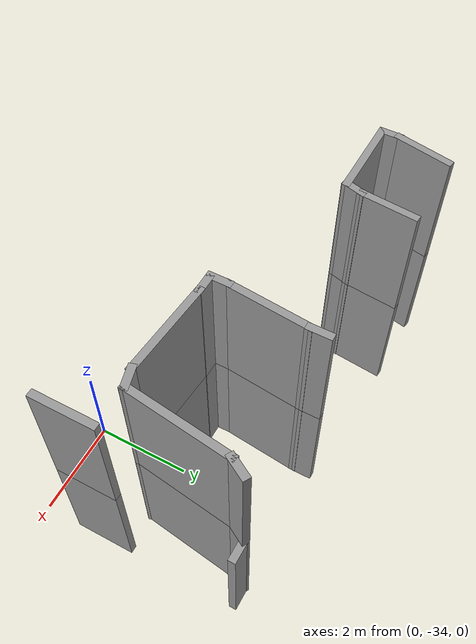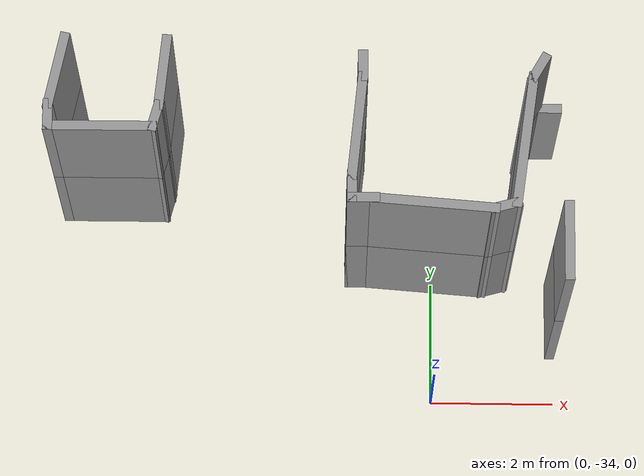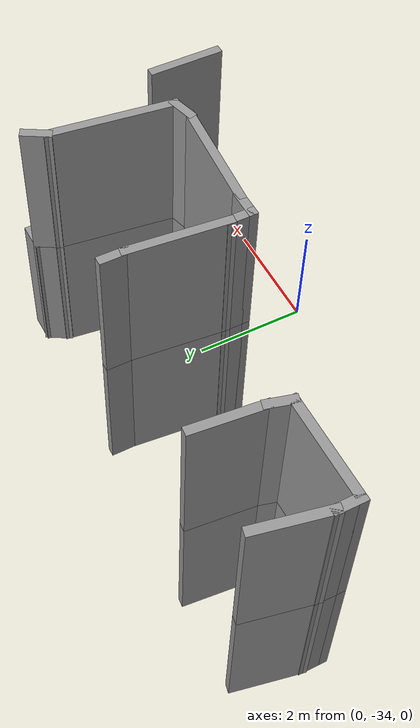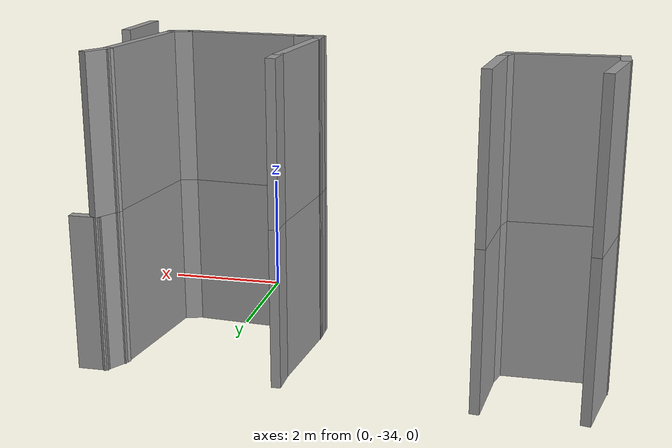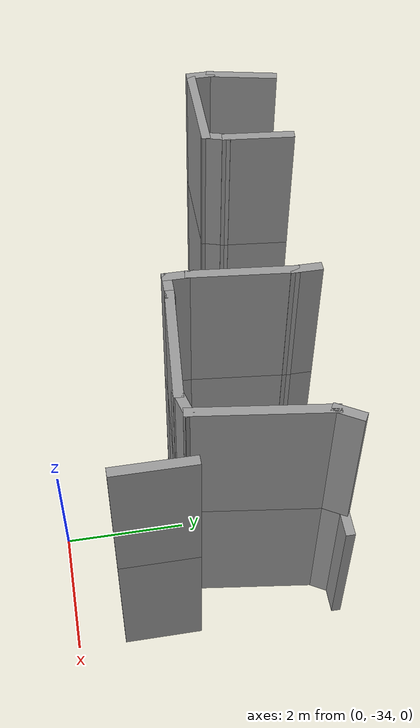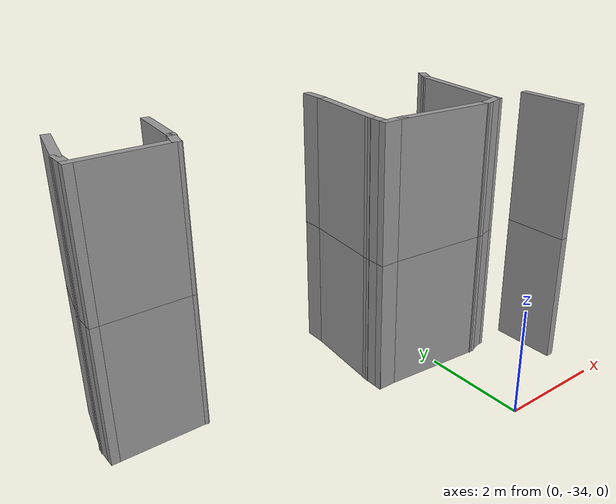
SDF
<sdf version="1.7">
 <model name="EnvDC01">
  <link name="Wall_223">
   <pose>1.94799 -32.6091 0 0 -0 1.5708</pose>
   <visual name="Wall_223_Visual">
    <pose>0 0 1.25 0 -0 0</pose>
    <geometry><box><size>1.25 0.15 2.5</size></box></geometry>
    <material>
     <script><uri>file://media/materials/scripts/gazebo.material</uri><name>Gazebo/Grey</name></script>
     <ambient>1 1 1 1</ambient>
     <shader type="pixel"/>
    </material>
    <meta><layer>0</layer></meta>
   </visual>
   <collision name="Wall_223_Collision">
    <pose>0 0 1.25 0 -0 0</pose>
    <geometry><box><size>1.25 0.15 2.5</size></box></geometry>
    <surface>
     <friction>
      <ode><mu>1</mu><mu2>1</mu2><fdir1>0 0 0</fdir1><slip1>0</slip1><slip2>0</slip2></ode>
      <torsional>
       <coefficient>1</coefficient>
       <patch_radius>0</patch_radius>
       <surface_radius>0</surface_radius>
       <use_patch_radius>1</use_patch_radius>
       <ode><slip>0</slip></ode>
      </torsional>
     </friction>
     <bounce><restitution_coefficient>0</restitution_coefficient><threshold>1e+06</threshold></bounce>
     <contact>
      <collide_without_contact>0</collide_without_contact>
      <collide_without_contact_bitmask>1</collide_without_contact_bitmask>
      <collide_bitmask>1</collide_bitmask>
      <ode>
       <soft_cfm>0</soft_cfm>
       <soft_erp>0.2</soft_erp>
       <kp>1e+13</kp>
       <kd>1</kd>
       <max_vel>0.01</max_vel>
       <min_depth>0</min_depth>
      </ode>
      <bullet>
       <split_impulse>1</split_impulse>
       <split_impulse_penetration_threshold>-0.01</split_impulse_penetration_threshold>
       <soft_cfm>0</soft_cfm>
       <soft_erp>0.2</soft_erp>
       <kp>1e+13</kp>
       <kd>1</kd>
      </bullet>
     </contact>
    </surface>
   </collision>
  </link>
  <link name="Wall_227">
   <pose>1.77299 -29.7091 0 0 -0 3.14159</pose>
   <visual name="Wall_227_Visual">
    <pose>0 0 1.25 0 -0 0</pose>
    <geometry><box><size>0.5 0.15 2.5</size></box></geometry>
    <material>
     <script><uri>file://media/materials/scripts/gazebo.material</uri><name>Gazebo/Grey</name></script>
     <ambient>1 1 1 1</ambient>
     <shader type="pixel"/>
    </material>
    <meta><layer>0</layer></meta>
   </visual>
   <collision name="Wall_227_Collision">
    <pose>0 0 1.25 0 -0 0</pose>
    <geometry><box><size>0.5 0.15 2.5</size></box></geometry>
    <surface>
     <friction>
      <ode><mu>1</mu><mu2>1</mu2><fdir1>0 0 0</fdir1><slip1>0</slip1><slip2>0</slip2></ode>
      <torsional>
       <coefficient>1</coefficient>
       <patch_radius>0</patch_radius>
       <surface_radius>0</surface_radius>
       <use_patch_radius>1</use_patch_radius>
       <ode><slip>0</slip></ode>
      </torsional>
     </friction>
     <bounce><restitution_coefficient>0</restitution_coefficient><threshold>1e+06</threshold></bounce>
     <contact>
      <collide_without_contact>0</collide_without_contact>
      <collide_without_contact_bitmask>1</collide_without_contact_bitmask>
      <collide_bitmask>1</collide_bitmask>
      <ode>
       <soft_cfm>0</soft_cfm>
       <soft_erp>0.2</soft_erp>
       <kp>1e+13</kp>
       <kd>1</kd>
       <max_vel>0.01</max_vel>
       <min_depth>0</min_depth>
      </ode>
      <bullet>
       <split_impulse>1</split_impulse>
       <split_impulse_penetration_threshold>-0.01</split_impulse_penetration_threshold>
       <soft_cfm>0</soft_cfm>
       <soft_erp>0.2</soft_erp>
       <kp>1e+13</kp>
       <kd>1</kd>
      </bullet>
     </contact>
    </surface>
   </collision>
  </link>
  <link name="Wall_228">
   <pose>1.51049 -29.8607 0 0 0 -2.0944</pose>
   <visual name="Wall_228_Visual">
    <pose>0 0 1.25 0 -0 0</pose>
    <geometry><box><size>0.5 0.15 2.5</size></box></geometry>
    <material>
     <script><uri>file://media/materials/scripts/gazebo.material</uri><name>Gazebo/Grey</name></script>
     <ambient>1 1 1 1</ambient>
     <shader type="pixel"/>
    </material>
    <meta><layer>0</layer></meta>
   </visual>
   <collision name="Wall_228_Collision">
    <pose>0 0 1.25 0 -0 0</pose>
    <geometry><box><size>0.5 0.15 2.5</size></box></geometry>
    <surface>
     <friction>
      <ode><mu>1</mu><mu2>1</mu2><fdir1>0 0 0</fdir1><slip1>0</slip1><slip2>0</slip2></ode>
      <torsional>
       <coefficient>1</coefficient>
       <patch_radius>0</patch_radius>
       <surface_radius>0</surface_radius>
       <use_patch_radius>1</use_patch_radius>
       <ode><slip>0</slip></ode>
      </torsional>
     </friction>
     <bounce><restitution_coefficient>0</restitution_coefficient><threshold>1e+06</threshold></bounce>
     <contact>
      <collide_without_contact>0</collide_without_contact>
      <collide_without_contact_bitmask>1</collide_without_contact_bitmask>
      <collide_bitmask>1</collide_bitmask>
      <ode>
       <soft_cfm>0</soft_cfm>
       <soft_erp>0.2</soft_erp>
       <kp>1e+13</kp>
       <kd>1</kd>
       <max_vel>0.01</max_vel>
       <min_depth>0</min_depth>
      </ode>
      <bullet>
       <split_impulse>1</split_impulse>
       <split_impulse_penetration_threshold>-0.01</split_impulse_penetration_threshold>
       <soft_cfm>0</soft_cfm>
       <soft_erp>0.2</soft_erp>
       <kp>1e+13</kp>
       <kd>1</kd>
      </bullet>
     </contact>
    </surface>
   </collision>
  </link>
  <link name="Wall_229">
   <pose>1.29203 -31.0169 0 0 0 -1.70042</pose>
   <visual name="Wall_229_Visual">
    <pose>0 0 1.25 0 -0 0</pose>
    <geometry><box><size>2.17641 0.15 2.5</size></box></geometry>
    <material>
     <script><uri>file://media/materials/scripts/gazebo.material</uri><name>Gazebo/Grey</name></script>
     <ambient>1 1 1 1</ambient>
     <shader type="pixel"/>
    </material>
    <meta><layer>0</layer></meta>
   </visual>
   <collision name="Wall_229_Collision">
    <pose>0 0 1.25 0 -0 0</pose>
    <geometry><box><size>2.17641 0.15 2.5</size></box></geometry>
    <surface>
     <friction>
      <ode><mu>1</mu><mu2>1</mu2><fdir1>0 0 0</fdir1><slip1>0</slip1><slip2>0</slip2></ode>
      <torsional>
       <coefficient>1</coefficient>
       <patch_radius>0</patch_radius>
       <surface_radius>0</surface_radius>
       <use_patch_radius>1</use_patch_radius>
       <ode><slip>0</slip></ode>
      </torsional>
     </friction>
     <bounce><restitution_coefficient>0</restitution_coefficient><threshold>1e+06</threshold></bounce>
     <contact>
      <collide_without_contact>0</collide_without_contact>
      <collide_without_contact_bitmask>1</collide_without_contact_bitmask>
      <collide_bitmask>1</collide_bitmask>
      <ode>
       <soft_cfm>0</soft_cfm>
       <soft_erp>0.2</soft_erp>
       <kp>1e+13</kp>
       <kd>1</kd>
       <max_vel>0.01</max_vel>
       <min_depth>0</min_depth>
      </ode>
      <bullet>
       <split_impulse>1</split_impulse>
       <split_impulse_penetration_threshold>-0.01</split_impulse_penetration_threshold>
       <soft_cfm>0</soft_cfm>
       <soft_erp>0.2</soft_erp>
       <kp>1e+13</kp>
       <kd>1</kd>
      </bullet>
     </contact>
    </surface>
   </collision>
  </link>
  <link name="Wall_230">
   <pose>0.992028 -32.0669 0 0 0 -2.87979</pose>
   <visual name="Wall_230_Visual">
    <pose>0 0 1.25 0 -0 0</pose>
    <geometry><box><size>0.5 0.15 2.5</size></box></geometry>
    <material>
     <script><uri>file://media/materials/scripts/gazebo.material</uri><name>Gazebo/Grey</name></script>
     <ambient>1 1 1 1</ambient>
     <shader type="pixel"/>
    </material>
    <meta><layer>0</layer></meta>
   </visual>
   <collision name="Wall_230_Collision">
    <pose>0 0 1.25 0 -0 0</pose>
    <geometry><box><size>0.5 0.15 2.5</size></box></geometry>
    <surface>
     <friction>
      <ode><mu>1</mu><mu2>1</mu2><fdir1>0 0 0</fdir1><slip1>0</slip1><slip2>0</slip2></ode>
      <torsional>
       <coefficient>1</coefficient>
       <patch_radius>0</patch_radius>
       <surface_radius>0</surface_radius>
       <use_patch_radius>1</use_patch_radius>
       <ode><slip>0</slip></ode>
      </torsional>
     </friction>
     <bounce><restitution_coefficient>0</restitution_coefficient><threshold>1e+06</threshold></bounce>
     <contact>
      <collide_without_contact>0</collide_without_contact>
      <collide_without_contact_bitmask>1</collide_without_contact_bitmask>
      <collide_bitmask>1</collide_bitmask>
      <ode>
       <soft_cfm>0</soft_cfm>
       <soft_erp>0.2</soft_erp>
       <kp>1e+13</kp>
       <kd>1</kd>
       <max_vel>0.01</max_vel>
       <min_depth>0</min_depth>
      </ode>
      <bullet>
       <split_impulse>1</split_impulse>
       <split_impulse_penetration_threshold>-0.01</split_impulse_penetration_threshold>
       <soft_cfm>0</soft_cfm>
       <soft_erp>0.2</soft_erp>
       <kp>1e+13</kp>
       <kd>1</kd>
      </bullet>
     </contact>
    </surface>
   </collision>
  </link>
  <link name="Wall_232">
   <pose>-0.088565 -32.041 0 0 -0 3.06364</pose>
   <visual name="Wall_232_Visual">
    <pose>0 0 1.25 0 -0 0</pose>
    <geometry><box><size>1.97866 0.15 2.5</size></box></geometry>
    <material>
     <script><uri>file://media/materials/scripts/gazebo.material</uri><name>Gazebo/Grey</name></script>
     <ambient>1 1 1 1</ambient>
     <shader type="pixel"/>
    </material>
    <meta><layer>0</layer></meta>
   </visual>
   <collision name="Wall_232_Collision">
    <pose>0 0 1.25 0 -0 0</pose>
    <geometry><box><size>1.97866 0.15 2.5</size></box></geometry>
    <surface>
     <friction>
      <ode><mu>1</mu><mu2>1</mu2><fdir1>0 0 0</fdir1><slip1>0</slip1><slip2>0</slip2></ode>
      <torsional>
       <coefficient>1</coefficient>
       <patch_radius>0</patch_radius>
       <surface_radius>0</surface_radius>
       <use_patch_radius>1</use_patch_radius>
       <ode><slip>0</slip></ode>
      </torsional>
     </friction>
     <bounce><restitution_coefficient>0</restitution_coefficient><threshold>1e+06</threshold></bounce>
     <contact>
      <collide_without_contact>0</collide_without_contact>
      <collide_without_contact_bitmask>1</collide_without_contact_bitmask>
      <collide_bitmask>1</collide_bitmask>
      <ode>
       <soft_cfm>0</soft_cfm>
       <soft_erp>0.2</soft_erp>
       <kp>1e+13</kp>
       <kd>1</kd>
       <max_vel>0.01</max_vel>
       <min_depth>0</min_depth>
      </ode>
      <bullet>
       <split_impulse>1</split_impulse>
       <split_impulse_penetration_threshold>-0.01</split_impulse_penetration_threshold>
       <soft_cfm>0</soft_cfm>
       <soft_erp>0.2</soft_erp>
       <kp>1e+13</kp>
       <kd>1</kd>
      </bullet>
     </contact>
    </surface>
   </collision>
  </link>
  <link name="Wall_233">
   <pose>-1.17512 -31.9634 0 0 -0 3.14159</pose>
   <visual name="Wall_233_Visual">
    <pose>0 0 1.25 0 -0 0</pose>
    <geometry><box><size>0.5 0.15 2.5</size></box></geometry>
    <material>
     <script><uri>file://media/materials/scripts/gazebo.material</uri><name>Gazebo/Grey</name></script>
     <ambient>1 1 1 1</ambient>
     <shader type="pixel"/>
    </material>
    <meta><layer>0</layer></meta>
   </visual>
   <collision name="Wall_233_Collision">
    <pose>0 0 1.25 0 -0 0</pose>
    <geometry><box><size>0.5 0.15 2.5</size></box></geometry>
    <surface>
     <friction>
      <ode><mu>1</mu><mu2>1</mu2><fdir1>0 0 0</fdir1><slip1>0</slip1><slip2>0</slip2></ode>
      <torsional>
       <coefficient>1</coefficient>
       <patch_radius>0</patch_radius>
       <surface_radius>0</surface_radius>
       <use_patch_radius>1</use_patch_radius>
       <ode><slip>0</slip></ode>
      </torsional>
     </friction>
     <bounce><restitution_coefficient>0</restitution_coefficient><threshold>1e+06</threshold></bounce>
     <contact>
      <collide_without_contact>0</collide_without_contact>
      <collide_without_contact_bitmask>1</collide_without_contact_bitmask>
      <collide_bitmask>1</collide_bitmask>
      <ode>
       <soft_cfm>0</soft_cfm>
       <soft_erp>0.2</soft_erp>
       <kp>1e+13</kp>
       <kd>1</kd>
       <max_vel>0.01</max_vel>
       <min_depth>0</min_depth>
      </ode>
      <bullet>
       <split_impulse>1</split_impulse>
       <split_impulse_penetration_threshold>-0.01</split_impulse_penetration_threshold>
       <soft_cfm>0</soft_cfm>
       <soft_erp>0.2</soft_erp>
       <kp>1e+13</kp>
       <kd>1</kd>
      </bullet>
     </contact>
    </surface>
   </collision>
  </link>
  <link name="Wall_235">
   <pose>-1.35012 -31.7884 0 0 -0 1.5708</pose>
   <visual name="Wall_235_Visual">
    <pose>0 0 1.25 0 -0 0</pose>
    <geometry><box><size>0.5 0.15 2.5</size></box></geometry>
    <material>
     <script><uri>file://media/materials/scripts/gazebo.material</uri><name>Gazebo/Grey</name></script>
     <ambient>1 1 1 1</ambient>
     <shader type="pixel"/>
    </material>
    <meta><layer>0</layer></meta>
   </visual>
   <collision name="Wall_235_Collision">
    <pose>0 0 1.25 0 -0 0</pose>
    <geometry><box><size>0.5 0.15 2.5</size></box></geometry>
    <surface>
     <friction>
      <ode><mu>1</mu><mu2>1</mu2><fdir1>0 0 0</fdir1><slip1>0</slip1><slip2>0</slip2></ode>
      <torsional>
       <coefficient>1</coefficient>
       <patch_radius>0</patch_radius>
       <surface_radius>0</surface_radius>
       <use_patch_radius>1</use_patch_radius>
       <ode><slip>0</slip></ode>
      </torsional>
     </friction>
     <bounce><restitution_coefficient>0</restitution_coefficient><threshold>1e+06</threshold></bounce>
     <contact>
      <collide_without_contact>0</collide_without_contact>
      <collide_without_contact_bitmask>1</collide_without_contact_bitmask>
      <collide_bitmask>1</collide_bitmask>
      <ode>
       <soft_cfm>0</soft_cfm>
       <soft_erp>0.2</soft_erp>
       <kp>1e+13</kp>
       <kd>1</kd>
       <max_vel>0.01</max_vel>
       <min_depth>0</min_depth>
      </ode>
      <bullet>
       <split_impulse>1</split_impulse>
       <split_impulse_penetration_threshold>-0.01</split_impulse_penetration_threshold>
       <soft_cfm>0</soft_cfm>
       <soft_erp>0.2</soft_erp>
       <kp>1e+13</kp>
       <kd>1</kd>
      </bullet>
     </contact>
    </surface>
   </collision>
  </link>
  <link name="Wall_236">
   <pose>-1.27248 -30.8236 0 0 -0 1.4728</pose>
   <visual name="Wall_236_Visual">
    <pose>0 0 1.25 0 -0 0</pose>
    <geometry><box><size>1.73717 0.15 2.5</size></box></geometry>
    <material>
     <script><uri>file://media/materials/scripts/gazebo.material</uri><name>Gazebo/Grey</name></script>
     <ambient>1 1 1 1</ambient>
     <shader type="pixel"/>
    </material>
    <meta><layer>0</layer></meta>
   </visual>
   <collision name="Wall_236_Collision">
    <pose>0 0 1.25 0 -0 0</pose>
    <geometry><box><size>1.73717 0.15 2.5</size></box></geometry>
    <surface>
     <friction>
      <ode><mu>1</mu><mu2>1</mu2><fdir1>0 0 0</fdir1><slip1>0</slip1><slip2>0</slip2></ode>
      <torsional>
       <coefficient>1</coefficient>
       <patch_radius>0</patch_radius>
       <surface_radius>0</surface_radius>
       <use_patch_radius>1</use_patch_radius>
       <ode><slip>0</slip></ode>
      </torsional>
     </friction>
     <bounce><restitution_coefficient>0</restitution_coefficient><threshold>1e+06</threshold></bounce>
     <contact>
      <collide_without_contact>0</collide_without_contact>
      <collide_without_contact_bitmask>1</collide_without_contact_bitmask>
      <collide_bitmask>1</collide_bitmask>
      <ode>
       <soft_cfm>0</soft_cfm>
       <soft_erp>0.2</soft_erp>
       <kp>1e+13</kp>
       <kd>1</kd>
       <max_vel>0.01</max_vel>
       <min_depth>0</min_depth>
      </ode>
      <bullet>
       <split_impulse>1</split_impulse>
       <split_impulse_penetration_threshold>-0.01</split_impulse_penetration_threshold>
       <soft_cfm>0</soft_cfm>
       <soft_erp>0.2</soft_erp>
       <kp>1e+13</kp>
       <kd>1</kd>
      </bullet>
     </contact>
    </surface>
   </collision>
  </link>
  <link name="Wall_237">
   <pose>-1.19483 -29.8588 0 0 -0 1.5708</pose>
   <visual name="Wall_237_Visual">
    <pose>0 0 1.25 0 -0 0</pose>
    <geometry><box><size>0.5 0.15 2.5</size></box></geometry>
    <material>
     <script><uri>file://media/materials/scripts/gazebo.material</uri><name>Gazebo/Grey</name></script>
     <ambient>1 1 1 1</ambient>
     <shader type="pixel"/>
    </material>
    <meta><layer>0</layer></meta>
   </visual>
   <collision name="Wall_237_Collision">
    <pose>0 0 1.25 0 -0 0</pose>
    <geometry><box><size>0.5 0.15 2.5</size></box></geometry>
    <surface>
     <friction>
      <ode><mu>1</mu><mu2>1</mu2><fdir1>0 0 0</fdir1><slip1>0</slip1><slip2>0</slip2></ode>
      <torsional>
       <coefficient>1</coefficient>
       <patch_radius>0</patch_radius>
       <surface_radius>0</surface_radius>
       <use_patch_radius>1</use_patch_radius>
       <ode><slip>0</slip></ode>
      </torsional>
     </friction>
     <bounce><restitution_coefficient>0</restitution_coefficient><threshold>1e+06</threshold></bounce>
     <contact>
      <collide_without_contact>0</collide_without_contact>
      <collide_without_contact_bitmask>1</collide_without_contact_bitmask>
      <collide_bitmask>1</collide_bitmask>
      <ode>
       <soft_cfm>0</soft_cfm>
       <soft_erp>0.2</soft_erp>
       <kp>1e+13</kp>
       <kd>1</kd>
       <max_vel>0.01</max_vel>
       <min_depth>0</min_depth>
      </ode>
      <bullet>
       <split_impulse>1</split_impulse>
       <split_impulse_penetration_threshold>-0.01</split_impulse_penetration_threshold>
       <soft_cfm>0</soft_cfm>
       <soft_erp>0.2</soft_erp>
       <kp>1e+13</kp>
       <kd>1</kd>
      </bullet>
     </contact>
    </surface>
   </collision>
  </link>
  <link name="Wall_243">
   <pose>-4.26763 -29.9951 0 0 0 -1.66793</pose>
   <visual name="Wall_243_Visual">
    <pose>0 0 1.25 0 -0 0</pose>
    <geometry><box><size>1.21755 0.15 2.5</size></box></geometry>
    <material>
     <script><uri>file://media/materials/scripts/gazebo.material</uri><name>Gazebo/Grey</name></script>
     <ambient>1 1 1 1</ambient>
     <shader type="pixel"/>
    </material>
    <meta><layer>0</layer></meta>
   </visual>
   <collision name="Wall_243_Collision">
    <pose>0 0 1.25 0 -0 0</pose>
    <geometry><box><size>1.21755 0.15 2.5</size></box></geometry>
    <surface>
     <friction>
      <ode><mu>1</mu><mu2>1</mu2><fdir1>0 0 0</fdir1><slip1>0</slip1><slip2>0</slip2></ode>
      <torsional>
       <coefficient>1</coefficient>
       <patch_radius>0</patch_radius>
       <surface_radius>0</surface_radius>
       <use_patch_radius>1</use_patch_radius>
       <ode><slip>0</slip></ode>
      </torsional>
     </friction>
     <bounce><restitution_coefficient>0</restitution_coefficient><threshold>1e+06</threshold></bounce>
     <contact>
      <collide_without_contact>0</collide_without_contact>
      <collide_without_contact_bitmask>1</collide_without_contact_bitmask>
      <collide_bitmask>1</collide_bitmask>
      <ode>
       <soft_cfm>0</soft_cfm>
       <soft_erp>0.2</soft_erp>
       <kp>1e+13</kp>
       <kd>1</kd>
       <max_vel>0.01</max_vel>
       <min_depth>0</min_depth>
      </ode>
      <bullet>
       <split_impulse>1</split_impulse>
       <split_impulse_penetration_threshold>-0.01</split_impulse_penetration_threshold>
       <soft_cfm>0</soft_cfm>
       <soft_erp>0.2</soft_erp>
       <kp>1e+13</kp>
       <kd>1</kd>
      </bullet>
     </contact>
    </surface>
   </collision>
  </link>
  <link name="Wall_244">
   <pose>-4.36469 -30.6954 0 0 0 -1.8326</pose>
   <visual name="Wall_244_Visual">
    <pose>0 0 1.25 0 -0 0</pose>
    <geometry><box><size>0.5 0.15 2.5</size></box></geometry>
    <material>
     <script><uri>file://media/materials/scripts/gazebo.material</uri><name>Gazebo/Grey</name></script>
     <ambient>1 1 1 1</ambient>
     <shader type="pixel"/>
    </material>
    <meta><layer>0</layer></meta>
   </visual>
   <collision name="Wall_244_Collision">
    <pose>0 0 1.25 0 -0 0</pose>
    <geometry><box><size>0.5 0.15 2.5</size></box></geometry>
    <surface>
     <friction>
      <ode><mu>1</mu><mu2>1</mu2><fdir1>0 0 0</fdir1><slip1>0</slip1><slip2>0</slip2></ode>
      <torsional>
       <coefficient>1</coefficient>
       <patch_radius>0</patch_radius>
       <surface_radius>0</surface_radius>
       <use_patch_radius>1</use_patch_radius>
       <ode><slip>0</slip></ode>
      </torsional>
     </friction>
     <bounce><restitution_coefficient>0</restitution_coefficient><threshold>1e+06</threshold></bounce>
     <contact>
      <collide_without_contact>0</collide_without_contact>
      <collide_without_contact_bitmask>1</collide_without_contact_bitmask>
      <collide_bitmask>1</collide_bitmask>
      <ode>
       <soft_cfm>0</soft_cfm>
       <soft_erp>0.2</soft_erp>
       <kp>1e+13</kp>
       <kd>1</kd>
       <max_vel>0.01</max_vel>
       <min_depth>0</min_depth>
      </ode>
      <bullet>
       <split_impulse>1</split_impulse>
       <split_impulse_penetration_threshold>-0.01</split_impulse_penetration_threshold>
       <soft_cfm>0</soft_cfm>
       <soft_erp>0.2</soft_erp>
       <kp>1e+13</kp>
       <kd>1</kd>
      </bullet>
     </contact>
    </surface>
   </collision>
  </link>
  <link name="Wall_245">
   <pose>-5.20998 -30.8644 0 0 -0 3.14159</pose>
   <visual name="Wall_245_Visual">
    <pose>0 0 1.25 0 -0 0</pose>
    <geometry><box><size>1.75 0.15 2.5</size></box></geometry>
    <material>
     <script><uri>file://media/materials/scripts/gazebo.material</uri><name>Gazebo/Grey</name></script>
     <ambient>1 1 1 1</ambient>
     <shader type="pixel"/>
    </material>
    <meta><layer>0</layer></meta>
   </visual>
   <collision name="Wall_245_Collision">
    <pose>0 0 1.25 0 -0 0</pose>
    <geometry><box><size>1.75 0.15 2.5</size></box></geometry>
    <surface>
     <friction>
      <ode><mu>1</mu><mu2>1</mu2><fdir1>0 0 0</fdir1><slip1>0</slip1><slip2>0</slip2></ode>
      <torsional>
       <coefficient>1</coefficient>
       <patch_radius>0</patch_radius>
       <surface_radius>0</surface_radius>
       <use_patch_radius>1</use_patch_radius>
       <ode><slip>0</slip></ode>
      </torsional>
     </friction>
     <bounce><restitution_coefficient>0</restitution_coefficient><threshold>1e+06</threshold></bounce>
     <contact>
      <collide_without_contact>0</collide_without_contact>
      <collide_without_contact_bitmask>1</collide_without_contact_bitmask>
      <collide_bitmask>1</collide_bitmask>
      <ode>
       <soft_cfm>0</soft_cfm>
       <soft_erp>0.2</soft_erp>
       <kp>1e+13</kp>
       <kd>1</kd>
       <max_vel>0.01</max_vel>
       <min_depth>0</min_depth>
      </ode>
      <bullet>
       <split_impulse>1</split_impulse>
       <split_impulse_penetration_threshold>-0.01</split_impulse_penetration_threshold>
       <soft_cfm>0</soft_cfm>
       <soft_erp>0.2</soft_erp>
       <kp>1e+13</kp>
       <kd>1</kd>
      </bullet>
     </contact>
    </surface>
   </collision>
  </link>
  <link name="Wall_246">
   <pose>-6.00998 -30.6894 0 0 -0 1.5708</pose>
   <visual name="Wall_246_Visual">
    <pose>0 0 1.25 0 -0 0</pose>
    <geometry><box><size>0.5 0.15 2.5</size></box></geometry>
    <material>
     <script><uri>file://media/materials/scripts/gazebo.material</uri><name>Gazebo/Grey</name></script>
     <ambient>1 1 1 1</ambient>
     <shader type="pixel"/>
    </material>
    <meta><layer>0</layer></meta>
   </visual>
   <collision name="Wall_246_Collision">
    <pose>0 0 1.25 0 -0 0</pose>
    <geometry><box><size>0.5 0.15 2.5</size></box></geometry>
    <surface>
     <friction>
      <ode><mu>1</mu><mu2>1</mu2><fdir1>0 0 0</fdir1><slip1>0</slip1><slip2>0</slip2></ode>
      <torsional>
       <coefficient>1</coefficient>
       <patch_radius>0</patch_radius>
       <surface_radius>0</surface_radius>
       <use_patch_radius>1</use_patch_radius>
       <ode><slip>0</slip></ode>
      </torsional>
     </friction>
     <bounce><restitution_coefficient>0</restitution_coefficient><threshold>1e+06</threshold></bounce>
     <contact>
      <collide_without_contact>0</collide_without_contact>
      <collide_without_contact_bitmask>1</collide_without_contact_bitmask>
      <collide_bitmask>1</collide_bitmask>
      <ode>
       <soft_cfm>0</soft_cfm>
       <soft_erp>0.2</soft_erp>
       <kp>1e+13</kp>
       <kd>1</kd>
       <max_vel>0.01</max_vel>
       <min_depth>0</min_depth>
      </ode>
      <bullet>
       <split_impulse>1</split_impulse>
       <split_impulse_penetration_threshold>-0.01</split_impulse_penetration_threshold>
       <soft_cfm>0</soft_cfm>
       <soft_erp>0.2</soft_erp>
       <kp>1e+13</kp>
       <kd>1</kd>
      </bullet>
     </contact>
    </surface>
   </collision>
  </link>
  <link name="Wall_248">
   <pose>-5.89998 -29.9789 0 0 -0 1.36821</pose>
   <visual name="Wall_248_Visual">
    <pose>0 0 1.25 0 -0 0</pose>
    <geometry><box><size>1.2434 0.15 2.5</size></box></geometry>
    <material>
     <script><uri>file://media/materials/scripts/gazebo.material</uri><name>Gazebo/Grey</name></script>
     <ambient>1 1 1 1</ambient>
     <shader type="pixel"/>
    </material>
    <meta><layer>0</layer></meta>
   </visual>
   <collision name="Wall_248_Collision">
    <pose>0 0 1.25 0 -0 0</pose>
    <geometry><box><size>1.2434 0.15 2.5</size></box></geometry>
    <surface>
     <friction>
      <ode><mu>1</mu><mu2>1</mu2><fdir1>0 0 0</fdir1><slip1>0</slip1><slip2>0</slip2></ode>
      <torsional>
       <coefficient>1</coefficient>
       <patch_radius>0</patch_radius>
       <surface_radius>0</surface_radius>
       <use_patch_radius>1</use_patch_radius>
       <ode><slip>0</slip></ode>
      </torsional>
     </friction>
     <bounce><restitution_coefficient>0</restitution_coefficient><threshold>1e+06</threshold></bounce>
     <contact>
      <collide_without_contact>0</collide_without_contact>
      <collide_without_contact_bitmask>1</collide_without_contact_bitmask>
      <collide_bitmask>1</collide_bitmask>
      <ode>
       <soft_cfm>0</soft_cfm>
       <soft_erp>0.2</soft_erp>
       <kp>1e+13</kp>
       <kd>1</kd>
       <max_vel>0.01</max_vel>
       <min_depth>0</min_depth>
      </ode>
      <bullet>
       <split_impulse>1</split_impulse>
       <split_impulse_penetration_threshold>-0.01</split_impulse_penetration_threshold>
       <soft_cfm>0</soft_cfm>
       <soft_erp>0.2</soft_erp>
       <kp>1e+13</kp>
       <kd>1</kd>
      </bullet>
     </contact>
    </surface>
   </collision>
  </link>
  <link name="Wall_393">
   <pose>1.94799 -32.6091 2.5 0 -0 1.5708</pose>
   <visual name="Wall_393_Visual">
    <pose>0 0 1.25 0 -0 0</pose>
    <geometry><box><size>1.25 0.15 2.5</size></box></geometry>
    <material>
     <script><uri>file://media/materials/scripts/gazebo.material</uri><name>Gazebo/Grey</name></script>
     <ambient>1 1 1 1</ambient>
     <shader type="pixel"/>
    </material>
    <meta><layer>1</layer></meta>
   </visual>
   <collision name="Wall_393_Collision">
    <pose>0 0 1.25 0 -0 0</pose>
    <geometry><box><size>1.25 0.15 2.5</size></box></geometry>
    <surface>
     <friction>
      <ode><mu>1</mu><mu2>1</mu2><fdir1>0 0 0</fdir1><slip1>0</slip1><slip2>0</slip2></ode>
      <torsional>
       <coefficient>1</coefficient>
       <patch_radius>0</patch_radius>
       <surface_radius>0</surface_radius>
       <use_patch_radius>1</use_patch_radius>
       <ode><slip>0</slip></ode>
      </torsional>
     </friction>
     <bounce><restitution_coefficient>0</restitution_coefficient><threshold>1e+06</threshold></bounce>
     <contact>
      <collide_without_contact>0</collide_without_contact>
      <collide_without_contact_bitmask>1</collide_without_contact_bitmask>
      <collide_bitmask>1</collide_bitmask>
      <ode>
       <soft_cfm>0</soft_cfm>
       <soft_erp>0.2</soft_erp>
       <kp>1e+13</kp>
       <kd>1</kd>
       <max_vel>0.01</max_vel>
       <min_depth>0</min_depth>
      </ode>
      <bullet>
       <split_impulse>1</split_impulse>
       <split_impulse_penetration_threshold>-0.01</split_impulse_penetration_threshold>
       <soft_cfm>0</soft_cfm>
       <soft_erp>0.2</soft_erp>
       <kp>1e+13</kp>
       <kd>1</kd>
      </bullet>
     </contact>
    </surface>
   </collision>
  </link>
  <link name="Wall_396">
   <pose>1.51049 -29.8607 2.5 0 0 -2.0944</pose>
   <visual name="Wall_396_Visual">
    <pose>0 0 1.25 0 -0 0</pose>
    <geometry><box><size>0.5 0.15 2.5</size></box></geometry>
    <material>
     <script><uri>file://media/materials/scripts/gazebo.material</uri><name>Gazebo/Grey</name></script>
     <ambient>1 1 1 1</ambient>
     <shader type="pixel"/>
    </material>
    <meta><layer>1</layer></meta>
   </visual>
   <collision name="Wall_396_Collision">
    <pose>0 0 1.25 0 -0 0</pose>
    <geometry><box><size>0.5 0.15 2.5</size></box></geometry>
    <surface>
     <friction>
      <ode><mu>1</mu><mu2>1</mu2><fdir1>0 0 0</fdir1><slip1>0</slip1><slip2>0</slip2></ode>
      <torsional>
       <coefficient>1</coefficient>
       <patch_radius>0</patch_radius>
       <surface_radius>0</surface_radius>
       <use_patch_radius>1</use_patch_radius>
       <ode><slip>0</slip></ode>
      </torsional>
     </friction>
     <bounce><restitution_coefficient>0</restitution_coefficient><threshold>1e+06</threshold></bounce>
     <contact>
      <collide_without_contact>0</collide_without_contact>
      <collide_without_contact_bitmask>1</collide_without_contact_bitmask>
      <collide_bitmask>1</collide_bitmask>
      <ode>
       <soft_cfm>0</soft_cfm>
       <soft_erp>0.2</soft_erp>
       <kp>1e+13</kp>
       <kd>1</kd>
       <max_vel>0.01</max_vel>
       <min_depth>0</min_depth>
      </ode>
      <bullet>
       <split_impulse>1</split_impulse>
       <split_impulse_penetration_threshold>-0.01</split_impulse_penetration_threshold>
       <soft_cfm>0</soft_cfm>
       <soft_erp>0.2</soft_erp>
       <kp>1e+13</kp>
       <kd>1</kd>
      </bullet>
     </contact>
    </surface>
   </collision>
  </link>
  <link name="Wall_397">
   <pose>1.29203 -31.0169 2.5 0 0 -1.70042</pose>
   <visual name="Wall_397_Visual">
    <pose>0 0 1.25 0 -0 0</pose>
    <geometry><box><size>2.17641 0.15 2.5</size></box></geometry>
    <material>
     <script><uri>file://media/materials/scripts/gazebo.material</uri><name>Gazebo/Grey</name></script>
     <ambient>1 1 1 1</ambient>
     <shader type="pixel"/>
    </material>
    <meta><layer>1</layer></meta>
   </visual>
   <collision name="Wall_397_Collision">
    <pose>0 0 1.25 0 -0 0</pose>
    <geometry><box><size>2.17641 0.15 2.5</size></box></geometry>
    <surface>
     <friction>
      <ode><mu>1</mu><mu2>1</mu2><fdir1>0 0 0</fdir1><slip1>0</slip1><slip2>0</slip2></ode>
      <torsional>
       <coefficient>1</coefficient>
       <patch_radius>0</patch_radius>
       <surface_radius>0</surface_radius>
       <use_patch_radius>1</use_patch_radius>
       <ode><slip>0</slip></ode>
      </torsional>
     </friction>
     <bounce><restitution_coefficient>0</restitution_coefficient><threshold>1e+06</threshold></bounce>
     <contact>
      <collide_without_contact>0</collide_without_contact>
      <collide_without_contact_bitmask>1</collide_without_contact_bitmask>
      <collide_bitmask>1</collide_bitmask>
      <ode>
       <soft_cfm>0</soft_cfm>
       <soft_erp>0.2</soft_erp>
       <kp>1e+13</kp>
       <kd>1</kd>
       <max_vel>0.01</max_vel>
       <min_depth>0</min_depth>
      </ode>
      <bullet>
       <split_impulse>1</split_impulse>
       <split_impulse_penetration_threshold>-0.01</split_impulse_penetration_threshold>
       <soft_cfm>0</soft_cfm>
       <soft_erp>0.2</soft_erp>
       <kp>1e+13</kp>
       <kd>1</kd>
      </bullet>
     </contact>
    </surface>
   </collision>
  </link>
  <link name="Wall_398">
   <pose>0.992028 -32.0669 2.5 0 0 -2.87979</pose>
   <visual name="Wall_398_Visual">
    <pose>0 0 1.25 0 -0 0</pose>
    <geometry><box><size>0.5 0.15 2.5</size></box></geometry>
    <material>
     <script><uri>file://media/materials/scripts/gazebo.material</uri><name>Gazebo/Grey</name></script>
     <ambient>1 1 1 1</ambient>
     <shader type="pixel"/>
    </material>
    <meta><layer>1</layer></meta>
   </visual>
   <collision name="Wall_398_Collision">
    <pose>0 0 1.25 0 -0 0</pose>
    <geometry><box><size>0.5 0.15 2.5</size></box></geometry>
    <surface>
     <friction>
      <ode><mu>1</mu><mu2>1</mu2><fdir1>0 0 0</fdir1><slip1>0</slip1><slip2>0</slip2></ode>
      <torsional>
       <coefficient>1</coefficient>
       <patch_radius>0</patch_radius>
       <surface_radius>0</surface_radius>
       <use_patch_radius>1</use_patch_radius>
       <ode><slip>0</slip></ode>
      </torsional>
     </friction>
     <bounce><restitution_coefficient>0</restitution_coefficient><threshold>1e+06</threshold></bounce>
     <contact>
      <collide_without_contact>0</collide_without_contact>
      <collide_without_contact_bitmask>1</collide_without_contact_bitmask>
      <collide_bitmask>1</collide_bitmask>
      <ode>
       <soft_cfm>0</soft_cfm>
       <soft_erp>0.2</soft_erp>
       <kp>1e+13</kp>
       <kd>1</kd>
       <max_vel>0.01</max_vel>
       <min_depth>0</min_depth>
      </ode>
      <bullet>
       <split_impulse>1</split_impulse>
       <split_impulse_penetration_threshold>-0.01</split_impulse_penetration_threshold>
       <soft_cfm>0</soft_cfm>
       <soft_erp>0.2</soft_erp>
       <kp>1e+13</kp>
       <kd>1</kd>
      </bullet>
     </contact>
    </surface>
   </collision>
  </link>
  <link name="Wall_399">
   <pose>-0.088565 -32.041 2.5 0 -0 3.06364</pose>
   <visual name="Wall_399_Visual">
    <pose>0 0 1.25 0 -0 0</pose>
    <geometry><box><size>1.97866 0.15 2.5</size></box></geometry>
    <material>
     <script><uri>file://media/materials/scripts/gazebo.material</uri><name>Gazebo/Grey</name></script>
     <ambient>1 1 1 1</ambient>
     <shader type="pixel"/>
    </material>
    <meta><layer>1</layer></meta>
   </visual>
   <collision name="Wall_399_Collision">
    <pose>0 0 1.25 0 -0 0</pose>
    <geometry><box><size>1.97866 0.15 2.5</size></box></geometry>
    <surface>
     <friction>
      <ode><mu>1</mu><mu2>1</mu2><fdir1>0 0 0</fdir1><slip1>0</slip1><slip2>0</slip2></ode>
      <torsional>
       <coefficient>1</coefficient>
       <patch_radius>0</patch_radius>
       <surface_radius>0</surface_radius>
       <use_patch_radius>1</use_patch_radius>
       <ode><slip>0</slip></ode>
      </torsional>
     </friction>
     <bounce><restitution_coefficient>0</restitution_coefficient><threshold>1e+06</threshold></bounce>
     <contact>
      <collide_without_contact>0</collide_without_contact>
      <collide_without_contact_bitmask>1</collide_without_contact_bitmask>
      <collide_bitmask>1</collide_bitmask>
      <ode>
       <soft_cfm>0</soft_cfm>
       <soft_erp>0.2</soft_erp>
       <kp>1e+13</kp>
       <kd>1</kd>
       <max_vel>0.01</max_vel>
       <min_depth>0</min_depth>
      </ode>
      <bullet>
       <split_impulse>1</split_impulse>
       <split_impulse_penetration_threshold>-0.01</split_impulse_penetration_threshold>
       <soft_cfm>0</soft_cfm>
       <soft_erp>0.2</soft_erp>
       <kp>1e+13</kp>
       <kd>1</kd>
      </bullet>
     </contact>
    </surface>
   </collision>
  </link>
  <link name="Wall_400">
   <pose>-1.17512 -31.9634 2.5 0 -0 3.14159</pose>
   <visual name="Wall_400_Visual">
    <pose>0 0 1.25 0 -0 0</pose>
    <geometry><box><size>0.5 0.15 2.5</size></box></geometry>
    <material>
     <script><uri>file://media/materials/scripts/gazebo.material</uri><name>Gazebo/Grey</name></script>
     <ambient>1 1 1 1</ambient>
     <shader type="pixel"/>
    </material>
    <meta><layer>1</layer></meta>
   </visual>
   <collision name="Wall_400_Collision">
    <pose>0 0 1.25 0 -0 0</pose>
    <geometry><box><size>0.5 0.15 2.5</size></box></geometry>
    <surface>
     <friction>
      <ode><mu>1</mu><mu2>1</mu2><fdir1>0 0 0</fdir1><slip1>0</slip1><slip2>0</slip2></ode>
      <torsional>
       <coefficient>1</coefficient>
       <patch_radius>0</patch_radius>
       <surface_radius>0</surface_radius>
       <use_patch_radius>1</use_patch_radius>
       <ode><slip>0</slip></ode>
      </torsional>
     </friction>
     <bounce><restitution_coefficient>0</restitution_coefficient><threshold>1e+06</threshold></bounce>
     <contact>
      <collide_without_contact>0</collide_without_contact>
      <collide_without_contact_bitmask>1</collide_without_contact_bitmask>
      <collide_bitmask>1</collide_bitmask>
      <ode>
       <soft_cfm>0</soft_cfm>
       <soft_erp>0.2</soft_erp>
       <kp>1e+13</kp>
       <kd>1</kd>
       <max_vel>0.01</max_vel>
       <min_depth>0</min_depth>
      </ode>
      <bullet>
       <split_impulse>1</split_impulse>
       <split_impulse_penetration_threshold>-0.01</split_impulse_penetration_threshold>
       <soft_cfm>0</soft_cfm>
       <soft_erp>0.2</soft_erp>
       <kp>1e+13</kp>
       <kd>1</kd>
      </bullet>
     </contact>
    </surface>
   </collision>
  </link>
  <link name="Wall_401">
   <pose>-1.35012 -31.7884 2.5 0 -0 1.5708</pose>
   <visual name="Wall_401_Visual">
    <pose>0 0 1.25 0 -0 0</pose>
    <geometry><box><size>0.5 0.15 2.5</size></box></geometry>
    <material>
     <script><uri>file://media/materials/scripts/gazebo.material</uri><name>Gazebo/Grey</name></script>
     <ambient>1 1 1 1</ambient>
     <shader type="pixel"/>
    </material>
    <meta><layer>1</layer></meta>
   </visual>
   <collision name="Wall_401_Collision">
    <pose>0 0 1.25 0 -0 0</pose>
    <geometry><box><size>0.5 0.15 2.5</size></box></geometry>
    <surface>
     <friction>
      <ode><mu>1</mu><mu2>1</mu2><fdir1>0 0 0</fdir1><slip1>0</slip1><slip2>0</slip2></ode>
      <torsional>
       <coefficient>1</coefficient>
       <patch_radius>0</patch_radius>
       <surface_radius>0</surface_radius>
       <use_patch_radius>1</use_patch_radius>
       <ode><slip>0</slip></ode>
      </torsional>
     </friction>
     <bounce><restitution_coefficient>0</restitution_coefficient><threshold>1e+06</threshold></bounce>
     <contact>
      <collide_without_contact>0</collide_without_contact>
      <collide_without_contact_bitmask>1</collide_without_contact_bitmask>
      <collide_bitmask>1</collide_bitmask>
      <ode>
       <soft_cfm>0</soft_cfm>
       <soft_erp>0.2</soft_erp>
       <kp>1e+13</kp>
       <kd>1</kd>
       <max_vel>0.01</max_vel>
       <min_depth>0</min_depth>
      </ode>
      <bullet>
       <split_impulse>1</split_impulse>
       <split_impulse_penetration_threshold>-0.01</split_impulse_penetration_threshold>
       <soft_cfm>0</soft_cfm>
       <soft_erp>0.2</soft_erp>
       <kp>1e+13</kp>
       <kd>1</kd>
      </bullet>
     </contact>
    </surface>
   </collision>
  </link>
  <link name="Wall_402">
   <pose>-1.27248 -30.8236 2.5 0 -0 1.4728</pose>
   <visual name="Wall_402_Visual">
    <pose>0 0 1.25 0 -0 0</pose>
    <geometry><box><size>1.73717 0.15 2.5</size></box></geometry>
    <material>
     <script><uri>file://media/materials/scripts/gazebo.material</uri><name>Gazebo/Grey</name></script>
     <ambient>1 1 1 1</ambient>
     <shader type="pixel"/>
    </material>
    <meta><layer>1</layer></meta>
   </visual>
   <collision name="Wall_402_Collision">
    <pose>0 0 1.25 0 -0 0</pose>
    <geometry><box><size>1.73717 0.15 2.5</size></box></geometry>
    <surface>
     <friction>
      <ode><mu>1</mu><mu2>1</mu2><fdir1>0 0 0</fdir1><slip1>0</slip1><slip2>0</slip2></ode>
      <torsional>
       <coefficient>1</coefficient>
       <patch_radius>0</patch_radius>
       <surface_radius>0</surface_radius>
       <use_patch_radius>1</use_patch_radius>
       <ode><slip>0</slip></ode>
      </torsional>
     </friction>
     <bounce><restitution_coefficient>0</restitution_coefficient><threshold>1e+06</threshold></bounce>
     <contact>
      <collide_without_contact>0</collide_without_contact>
      <collide_without_contact_bitmask>1</collide_without_contact_bitmask>
      <collide_bitmask>1</collide_bitmask>
      <ode>
       <soft_cfm>0</soft_cfm>
       <soft_erp>0.2</soft_erp>
       <kp>1e+13</kp>
       <kd>1</kd>
       <max_vel>0.01</max_vel>
       <min_depth>0</min_depth>
      </ode>
      <bullet>
       <split_impulse>1</split_impulse>
       <split_impulse_penetration_threshold>-0.01</split_impulse_penetration_threshold>
       <soft_cfm>0</soft_cfm>
       <soft_erp>0.2</soft_erp>
       <kp>1e+13</kp>
       <kd>1</kd>
      </bullet>
     </contact>
    </surface>
   </collision>
  </link>
  <link name="Wall_403">
   <pose>-1.19483 -29.8588 2.5 0 -0 1.5708</pose>
   <visual name="Wall_403_Visual">
    <pose>0 0 1.25 0 -0 0</pose>
    <geometry><box><size>0.5 0.15 2.5</size></box></geometry>
    <material>
     <script><uri>file://media/materials/scripts/gazebo.material</uri><name>Gazebo/Grey</name></script>
     <ambient>1 1 1 1</ambient>
     <shader type="pixel"/>
    </material>
    <meta><layer>1</layer></meta>
   </visual>
   <collision name="Wall_403_Collision">
    <pose>0 0 1.25 0 -0 0</pose>
    <geometry><box><size>0.5 0.15 2.5</size></box></geometry>
    <surface>
     <friction>
      <ode><mu>1</mu><mu2>1</mu2><fdir1>0 0 0</fdir1><slip1>0</slip1><slip2>0</slip2></ode>
      <torsional>
       <coefficient>1</coefficient>
       <patch_radius>0</patch_radius>
       <surface_radius>0</surface_radius>
       <use_patch_radius>1</use_patch_radius>
       <ode><slip>0</slip></ode>
      </torsional>
     </friction>
     <bounce><restitution_coefficient>0</restitution_coefficient><threshold>1e+06</threshold></bounce>
     <contact>
      <collide_without_contact>0</collide_without_contact>
      <collide_without_contact_bitmask>1</collide_without_contact_bitmask>
      <collide_bitmask>1</collide_bitmask>
      <ode>
       <soft_cfm>0</soft_cfm>
       <soft_erp>0.2</soft_erp>
       <kp>1e+13</kp>
       <kd>1</kd>
       <max_vel>0.01</max_vel>
       <min_depth>0</min_depth>
      </ode>
      <bullet>
       <split_impulse>1</split_impulse>
       <split_impulse_penetration_threshold>-0.01</split_impulse_penetration_threshold>
       <soft_cfm>0</soft_cfm>
       <soft_erp>0.2</soft_erp>
       <kp>1e+13</kp>
       <kd>1</kd>
      </bullet>
     </contact>
    </surface>
   </collision>
  </link>
  <link name="Wall_407">
   <pose>-4.26763 -29.9951 2.5 0 0 -1.66793</pose>
   <visual name="Wall_407_Visual">
    <pose>0 0 1.25 0 -0 0</pose>
    <geometry><box><size>1.21755 0.15 2.5</size></box></geometry>
    <material>
     <script><uri>file://media/materials/scripts/gazebo.material</uri><name>Gazebo/Grey</name></script>
     <ambient>1 1 1 1</ambient>
     <shader type="pixel"/>
    </material>
    <meta><layer>1</layer></meta>
   </visual>
   <collision name="Wall_407_Collision">
    <pose>0 0 1.25 0 -0 0</pose>
    <geometry><box><size>1.21755 0.15 2.5</size></box></geometry>
    <surface>
     <friction>
      <ode><mu>1</mu><mu2>1</mu2><fdir1>0 0 0</fdir1><slip1>0</slip1><slip2>0</slip2></ode>
      <torsional>
       <coefficient>1</coefficient>
       <patch_radius>0</patch_radius>
       <surface_radius>0</surface_radius>
       <use_patch_radius>1</use_patch_radius>
       <ode><slip>0</slip></ode>
      </torsional>
     </friction>
     <bounce><restitution_coefficient>0</restitution_coefficient><threshold>1e+06</threshold></bounce>
     <contact>
      <collide_without_contact>0</collide_without_contact>
      <collide_without_contact_bitmask>1</collide_without_contact_bitmask>
      <collide_bitmask>1</collide_bitmask>
      <ode>
       <soft_cfm>0</soft_cfm>
       <soft_erp>0.2</soft_erp>
       <kp>1e+13</kp>
       <kd>1</kd>
       <max_vel>0.01</max_vel>
       <min_depth>0</min_depth>
      </ode>
      <bullet>
       <split_impulse>1</split_impulse>
       <split_impulse_penetration_threshold>-0.01</split_impulse_penetration_threshold>
       <soft_cfm>0</soft_cfm>
       <soft_erp>0.2</soft_erp>
       <kp>1e+13</kp>
       <kd>1</kd>
      </bullet>
     </contact>
    </surface>
   </collision>
  </link>
  <link name="Wall_408">
   <pose>-4.36469 -30.6954 2.5 0 0 -1.8326</pose>
   <visual name="Wall_408_Visual">
    <pose>0 0 1.25 0 -0 0</pose>
    <geometry><box><size>0.5 0.15 2.5</size></box></geometry>
    <material>
     <script><uri>file://media/materials/scripts/gazebo.material</uri><name>Gazebo/Grey</name></script>
     <ambient>1 1 1 1</ambient>
     <shader type="pixel"/>
    </material>
    <meta><layer>1</layer></meta>
   </visual>
   <collision name="Wall_408_Collision">
    <pose>0 0 1.25 0 -0 0</pose>
    <geometry><box><size>0.5 0.15 2.5</size></box></geometry>
    <surface>
     <friction>
      <ode><mu>1</mu><mu2>1</mu2><fdir1>0 0 0</fdir1><slip1>0</slip1><slip2>0</slip2></ode>
      <torsional>
       <coefficient>1</coefficient>
       <patch_radius>0</patch_radius>
       <surface_radius>0</surface_radius>
       <use_patch_radius>1</use_patch_radius>
       <ode><slip>0</slip></ode>
      </torsional>
     </friction>
     <bounce><restitution_coefficient>0</restitution_coefficient><threshold>1e+06</threshold></bounce>
     <contact>
      <collide_without_contact>0</collide_without_contact>
      <collide_without_contact_bitmask>1</collide_without_contact_bitmask>
      <collide_bitmask>1</collide_bitmask>
      <ode>
       <soft_cfm>0</soft_cfm>
       <soft_erp>0.2</soft_erp>
       <kp>1e+13</kp>
       <kd>1</kd>
       <max_vel>0.01</max_vel>
       <min_depth>0</min_depth>
      </ode>
      <bullet>
       <split_impulse>1</split_impulse>
       <split_impulse_penetration_threshold>-0.01</split_impulse_penetration_threshold>
       <soft_cfm>0</soft_cfm>
       <soft_erp>0.2</soft_erp>
       <kp>1e+13</kp>
       <kd>1</kd>
      </bullet>
     </contact>
    </surface>
   </collision>
  </link>
  <link name="Wall_409">
   <pose>-5.20998 -30.8644 2.5 0 -0 3.14159</pose>
   <visual name="Wall_409_Visual">
    <pose>0 0 1.25 0 -0 0</pose>
    <geometry><box><size>1.75 0.15 2.5</size></box></geometry>
    <material>
     <script><uri>file://media/materials/scripts/gazebo.material</uri><name>Gazebo/Grey</name></script>
     <ambient>1 1 1 1</ambient>
     <shader type="pixel"/>
    </material>
    <meta><layer>1</layer></meta>
   </visual>
   <collision name="Wall_409_Collision">
    <pose>0 0 1.25 0 -0 0</pose>
    <geometry><box><size>1.75 0.15 2.5</size></box></geometry>
    <surface>
     <friction>
      <ode><mu>1</mu><mu2>1</mu2><fdir1>0 0 0</fdir1><slip1>0</slip1><slip2>0</slip2></ode>
      <torsional>
       <coefficient>1</coefficient>
       <patch_radius>0</patch_radius>
       <surface_radius>0</surface_radius>
       <use_patch_radius>1</use_patch_radius>
       <ode><slip>0</slip></ode>
      </torsional>
     </friction>
     <bounce><restitution_coefficient>0</restitution_coefficient><threshold>1e+06</threshold></bounce>
     <contact>
      <collide_without_contact>0</collide_without_contact>
      <collide_without_contact_bitmask>1</collide_without_contact_bitmask>
      <collide_bitmask>1</collide_bitmask>
      <ode>
       <soft_cfm>0</soft_cfm>
       <soft_erp>0.2</soft_erp>
       <kp>1e+13</kp>
       <kd>1</kd>
       <max_vel>0.01</max_vel>
       <min_depth>0</min_depth>
      </ode>
      <bullet>
       <split_impulse>1</split_impulse>
       <split_impulse_penetration_threshold>-0.01</split_impulse_penetration_threshold>
       <soft_cfm>0</soft_cfm>
       <soft_erp>0.2</soft_erp>
       <kp>1e+13</kp>
       <kd>1</kd>
      </bullet>
     </contact>
    </surface>
   </collision>
  </link>
  <link name="Wall_410">
   <pose>-6.00998 -30.6894 2.5 0 -0 1.5708</pose>
   <visual name="Wall_410_Visual">
    <pose>0 0 1.25 0 -0 0</pose>
    <geometry><box><size>0.5 0.15 2.5</size></box></geometry>
    <material>
     <script><uri>file://media/materials/scripts/gazebo.material</uri><name>Gazebo/Grey</name></script>
     <ambient>1 1 1 1</ambient>
     <shader type="pixel"/>
    </material>
    <meta><layer>1</layer></meta>
   </visual>
   <collision name="Wall_410_Collision">
    <pose>0 0 1.25 0 -0 0</pose>
    <geometry><box><size>0.5 0.15 2.5</size></box></geometry>
    <surface>
     <friction>
      <ode><mu>1</mu><mu2>1</mu2><fdir1>0 0 0</fdir1><slip1>0</slip1><slip2>0</slip2></ode>
      <torsional>
       <coefficient>1</coefficient>
       <patch_radius>0</patch_radius>
       <surface_radius>0</surface_radius>
       <use_patch_radius>1</use_patch_radius>
       <ode><slip>0</slip></ode>
      </torsional>
     </friction>
     <bounce><restitution_coefficient>0</restitution_coefficient><threshold>1e+06</threshold></bounce>
     <contact>
      <collide_without_contact>0</collide_without_contact>
      <collide_without_contact_bitmask>1</collide_without_contact_bitmask>
      <collide_bitmask>1</collide_bitmask>
      <ode>
       <soft_cfm>0</soft_cfm>
       <soft_erp>0.2</soft_erp>
       <kp>1e+13</kp>
       <kd>1</kd>
       <max_vel>0.01</max_vel>
       <min_depth>0</min_depth>
      </ode>
      <bullet>
       <split_impulse>1</split_impulse>
       <split_impulse_penetration_threshold>-0.01</split_impulse_penetration_threshold>
       <soft_cfm>0</soft_cfm>
       <soft_erp>0.2</soft_erp>
       <kp>1e+13</kp>
       <kd>1</kd>
      </bullet>
     </contact>
    </surface>
   </collision>
  </link>
  <link name="Wall_411">
   <pose>-5.89998 -29.9789 2.5 0 -0 1.36821</pose>
   <visual name="Wall_411_Visual">
    <pose>0 0 1.25 0 -0 0</pose>
    <geometry><box><size>1.2434 0.15 2.5</size></box></geometry>
    <material>
     <script><uri>file://media/materials/scripts/gazebo.material</uri><name>Gazebo/Grey</name></script>
     <ambient>1 1 1 1</ambient>
     <shader type="pixel"/>
    </material>
    <meta><layer>1</layer></meta>
   </visual>
   <collision name="Wall_411_Collision">
    <pose>0 0 1.25 0 -0 0</pose>
    <geometry><box><size>1.2434 0.15 2.5</size></box></geometry>
    <surface>
     <friction>
      <ode><mu>1</mu><mu2>1</mu2><fdir1>0 0 0</fdir1><slip1>0</slip1><slip2>0</slip2></ode>
      <torsional>
       <coefficient>1</coefficient>
       <patch_radius>0</patch_radius>
       <surface_radius>0</surface_radius>
       <use_patch_radius>1</use_patch_radius>
       <ode><slip>0</slip></ode>
      </torsional>
     </friction>
     <bounce><restitution_coefficient>0</restitution_coefficient><threshold>1e+06</threshold></bounce>
     <contact>
      <collide_without_contact>0</collide_without_contact>
      <collide_without_contact_bitmask>1</collide_without_contact_bitmask>
      <collide_bitmask>1</collide_bitmask>
      <ode>
       <soft_cfm>0</soft_cfm>
       <soft_erp>0.2</soft_erp>
       <kp>1e+13</kp>
       <kd>1</kd>
       <max_vel>0.01</max_vel>
       <min_depth>0</min_depth>
      </ode>
      <bullet>
       <split_impulse>1</split_impulse>
       <split_impulse_penetration_threshold>-0.01</split_impulse_penetration_threshold>
       <soft_cfm>0</soft_cfm>
       <soft_erp>0.2</soft_erp>
       <kp>1e+13</kp>
       <kd>1</kd>
      </bullet>
     </contact>
    </surface>
   </collision>
  </link>
  <static>1</static>
 </model>
</sdf>
